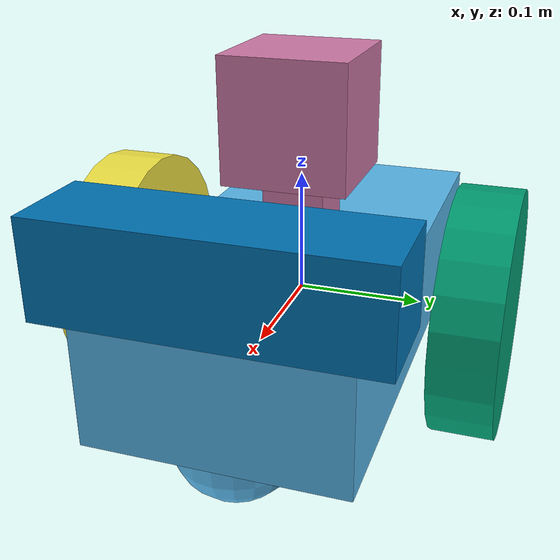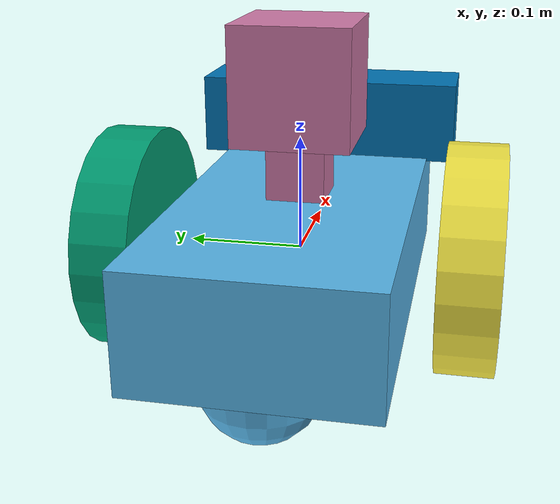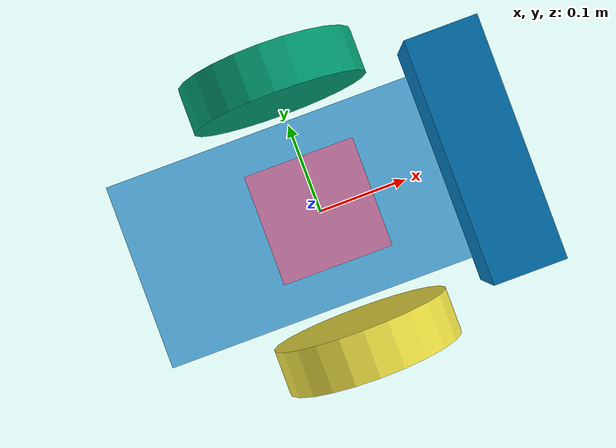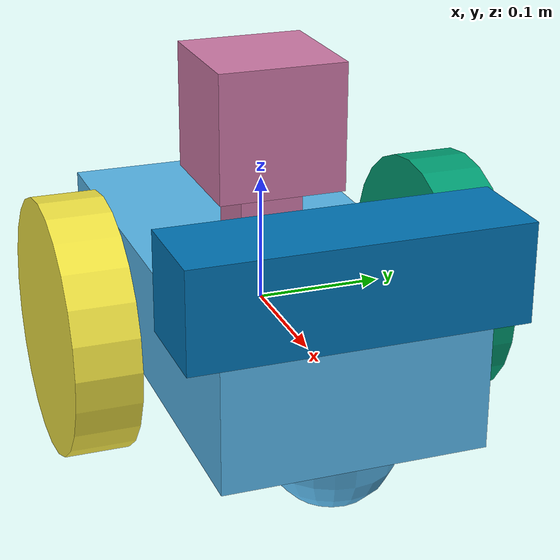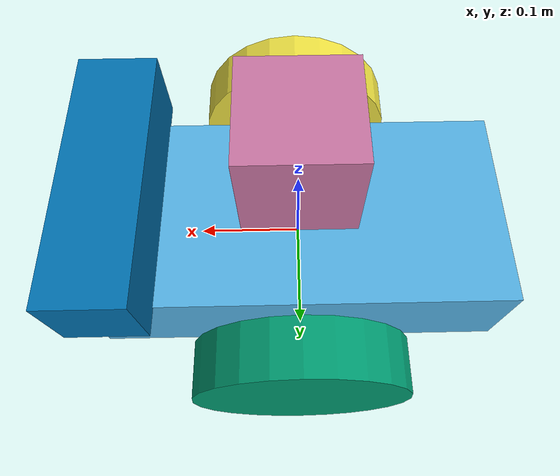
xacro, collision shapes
<?xml version='1.0'?>

<robot name="udacity_bot" xmlns:xacro="http://www.ros.org/wiki/xacro">

  <xacro:include filename="$(find map-my-world)/urdf/udacity_bot.gazebo" />
  <link name="robot_footprint"></link>

  <joint name="robot_footprint_joint" type="fixed">
    <origin xyz="0 0 0" rpy="0 0 0" />
    <parent link="robot_footprint"/>
    <child link="chassis" />
  </joint>

  <link name='chassis'>
    <pose>0 0 0.1 0 0 0</pose>

    <inertial>
      <mass value="15.0"/>
      <origin xyz="0.0 0 0" rpy=" 0 0 0"/>
      <inertia
          ixx="0.1" ixy="0" ixz="0"
          iyy="0.1" iyz="0"
          izz="0.1"
      />
    </inertial>

    <collision name='collision'>
      <origin xyz="0 0 0" rpy=" 0 0 0"/>
      <geometry>
        <box size=".4 .2 .1"/>
      </geometry>
    </collision>

    <visual name='chassis_visual'>
      <origin xyz="0 0 0" rpy=" 0 0 0"/>
      <geometry>
        <box size=".4 .2 .1"/>
      </geometry>
    </visual>

    <collision name='back_caster_collision'>
      <origin xyz="-0.15 0 -0.05" rpy=" 0 0 0"/>
      <geometry>
        <sphere radius="0.0499"/>
      </geometry>
    </collision>

    <visual name='back_caster_visual'>
      <origin xyz="-0.15 0 -0.05" rpy=" 0 0 0"/>
      <geometry>
        <sphere radius="0.05"/>
      </geometry>
    </visual>

    <collision name='front_caster_collision'>
      <origin xyz="0.15 0 -0.05" rpy=" 0 0 0"/>
      <geometry>
        <sphere radius="0.0499"/>
      </geometry>
    </collision>

    <visual name='front_caster_visual'>
      <origin xyz="0.15 0 -0.05" rpy=" 0 0 0"/>
      <geometry>
        <sphere radius="0.05"/>
      </geometry>
    </visual>

  </link>

  <!-- Left wheel joint-->
  <joint type="continuous" name="left_wheel_hinge">
    <origin xyz="0 0.15 0" rpy="0 0 0"/>
    <child link="left_wheel"/>
    <parent link="chassis"/>
    <axis xyz="0 1 0" rpy="0 0 0"/>
    <limit effort="10000" velocity="1000"/>
    <dynamics damping="1.0" friction="1.0"/>
  </joint>
  <!-- Left wheel link-->
  <link name='left_wheel'>
    <inertial>
      <mass value="5.0"/>
      <origin xyz="0 0 0" rpy=" 0 1.5707 1.5707"/>
      <inertia
          ixx="0.1" ixy="0" ixz="0"
          iyy="0.1" iyz="0"
          izz="0.1"
      />
    </inertial>

    <collision name='left_wheel_collision'>
      <origin xyz="0 0 0" rpy=" 0 1.5707 1.5707"/>
      <geometry>
        <cylinder radius="0.1" length="0.05"/>
      </geometry>
    </collision>

    <visual name='left_wheel_visual'>
      <origin xyz="0 0 0" rpy=" 0 1.5707 1.5707"/>
      <geometry>
        <cylinder radius="0.1" length="0.05"/>
      </geometry>
    </visual>
  </link>

  <!-- Right wheel joint-->
  <joint type="continuous" name="right_wheel_hinge">
    <origin xyz="0 -0.15 0" rpy="0 0 0"/>
    <child link="right_wheel"/>
    <parent link="chassis"/>
    <axis xyz="0 1 0" rpy="0 0 0"/>
    <limit effort="10000" velocity="1000"/>
    <dynamics damping="1.0" friction="1.0"/>
  </joint>
  <!-- Left wheel link-->
  <link name='right_wheel'>
    <inertial>
      <mass value="5.0"/>
      <origin xyz="0 0 0" rpy=" 0 1.5707 1.5707"/>
      <inertia
          ixx="0.1" ixy="0" ixz="0"
          iyy="0.1" iyz="0"
          izz="0.1"
      />
    </inertial>

    <collision name='right_wheel_collision'>
      <origin xyz="0 0 0" rpy=" 0 1.5707 1.5707"/>
      <geometry>
        <cylinder radius="0.1" length="0.05"/>
      </geometry>
    </collision>

    <visual name='right_wheel_visual'>
      <origin xyz="0 0 0" rpy=" 0 1.5707 1.5707"/>
      <geometry>
        <cylinder radius="0.1" length="0.05"/>
      </geometry>
    </visual>
   </link>

  <!-- Kinect RGB camera link -->
  <link name="RGBD_camera">

    <inertial>
      <mass value="0.1"/>
      <origin xyz="0 0 0" rpy="0 0 0"/>
      <inertia
          ixx="1e-6" ixy="0" ixz="0"
          iyy="1e-6" iyz="0"
          izz="1e-6"
      />
    </inertial>

    <collision name="RGB_camera_collision">
      <origin xyz="-0.03 0 -0.015" rpy=" 0 0 0"/>
      <geometry>
        <box size="0.075 0.25 0.075"/>
      </geometry>
    </collision>

    <visual name="RGB_camera_visual">
      <origin xyz="0 0 0" rpy=" 0 0 0"/>
      <geometry>
        <mesh filename="package://map-my-world/meshes/kinect.dae"/>
      </geometry>
    </visual>
  </link>

  <!--Kinect Depth camera link-->
  <link name="Depth_camera"></link>

  <!-- Kinect RGB camera joint-->
  <joint name="RGB_camera_joint" type="fixed">
  	<origin xyz="0.2 0 0.1" rpy="0 0 0"/>
  	<child link="RGBD_camera"/>
  	<parent link="chassis"/>
	<axis xyz="1 0 0" rpy="0 0 0"/>
  </joint>

  <!--Kinect Depth camera joint-->
  <joint name="Depth_camera_joint" type="fixed">
  	<origin xyz="0.2 0 0.1" rpy="${-pi/2} 0 ${-pi/2}"/>
    	<child link="Depth_camera"/>
	<parent link="RGBD_camera"/>
	<axis xyz="1 0 0" rpy="0 0 0"/>
  </joint>

  <!-- Lazer/Hokuyo joint -->
  <joint type="fixed" name="hokuyo_joint">
    <origin xyz="0 0 0.15" rpy="0 0 0"/>
    <child link="hokuyo"/>
    <parent link="chassis"/>
  </joint>

  <!-- Lazer/Hokuyo link -->
  <link name='hokuyo'>
    <inertial>
      <mass value="0.1"/>
      <origin xyz="0 0 0" rpy="0 0 0"/>
      <inertia
          ixx="1e-6" ixy="0" ixz="0"
          iyy="1e-6" iyz="0"
          izz="1e-6"
      />
    </inertial>

    <collision name='hokuyo'>
      <origin xyz="0 0 0" rpy=" 0 0 0"/>
      <geometry>
        <box size="0.1 0.1 0.1"/>
      </geometry>
    </collision>

    <visual name='hokuyo'>
      <origin xyz="0 0 0" rpy=" 0 0 0"/>
      <geometry>
        <!--box size="0.05 0.05 0.05"/-->
        <mesh filename="package://map-my-world/meshes/hokuyo.dae"/>
      </geometry>
    </visual>

    <visual name='hokuyo_base_visual'>
      <origin xyz="0 0 -0.0925" rpy=" 0 0 0"/>
      <geometry>
        <box size="0.05 0.05 0.115"/>
      </geometry>
    </visual>

    <collision name='hokuyo_base_collision'>
      <origin xyz="0 0 -0.0925" rpy=" 0 0 0"/>
      <geometry>
        <box size="0.05 0.05 0.115"/>
      </geometry>
    </collision>
  </link>

</robot>
